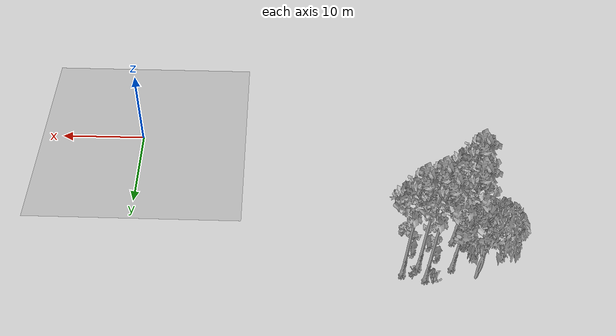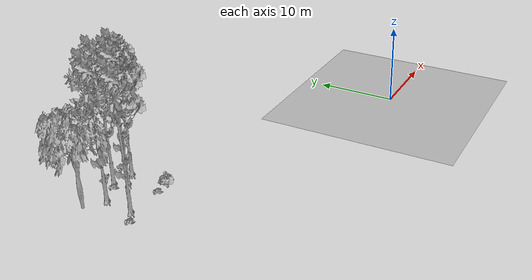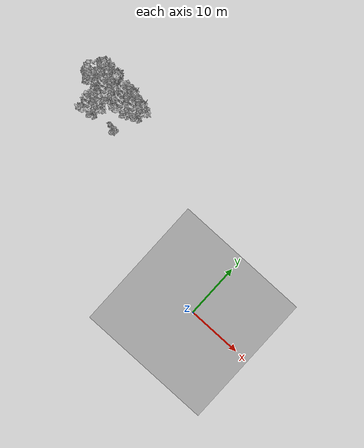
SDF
<sdf version="1.7">
 <world name="default">
  <model name="ground_plane">
   <static>1</static>
   <link name="link">
    <collision name="collision">
     <pose>-50 0 0 0 -0 0</pose>
     <geometry><plane><normal>0 0 1</normal><size>80 80</size></plane></geometry>
     <surface><contact><ode><min_depth>0.01</min_depth><max_vel>0</max_vel></ode></contact></surface>
    </collision>
    <visual name="grass">
     <cast_shadows>0</cast_shadows>
     <geometry>
      <mesh>
       <scale>0.46714285714285714 0.46714285714285714 0.1</scale>
       <uri>file://grass_plane/meshes/grass_plane.dae</uri>
      </mesh>
     </geometry>
    </visual>
   </link>
  </model>
  <model name="Tree 212">
   <static>1</static>
   <pose>-32.1365651964879 18.411424882560254 0 1.57079 -0 0</pose>
   <link name="link">
    <collision name="collision">
     <geometry><mesh><scale>3.5 5 3.5</scale><uri>model://tree_9/meshes/tree_9.obj</uri></mesh></geometry>
    </collision>
    <visual name="visual">
     <geometry><mesh><scale>3.5 5 3.5</scale><uri>model://tree_9/meshes/tree_9.obj</uri></mesh></geometry>
    </visual>
   </link>
  </model>
  <model name="Tree 324">
   <static>1</static>
   <pose>-30.355583406932638 19.28632276620141 0 1.57079 -0 0</pose>
   <link name="link">
    <collision name="collision">
     <geometry><mesh><scale>3.5 5 3.5</scale><uri>model://tree_9/meshes/tree_9.obj</uri></mesh></geometry>
    </collision>
    <visual name="visual">
     <geometry><mesh><scale>3.5 5 3.5</scale><uri>model://tree_9/meshes/tree_9.obj</uri></mesh></geometry>
    </visual>
   </link>
  </model>
  <model name="Tree 338">
   <static>1</static>
   <pose>-32.78918732212225 19.865334830577766 0 1.57079 -0 0</pose>
   <link name="link">
    <collision name="collision">
     <geometry><mesh><scale>3.5 5 3.5</scale><uri>model://tree_9/meshes/tree_9.obj</uri></mesh></geometry>
    </collision>
    <visual name="visual">
     <geometry><mesh><scale>3.5 5 3.5</scale><uri>model://tree_9/meshes/tree_9.obj</uri></mesh></geometry>
    </visual>
   </link>
  </model>
  <model name="Tree 408">
   <static>1</static>
   <pose>-36.32038341167514 14.74145992589402 0 1.57079 -0 0</pose>
   <link name="link">
    <collision name="collision">
     <geometry><mesh><scale>3.5 5 3.5</scale><uri>model://tree_9/meshes/tree_9.obj</uri></mesh></geometry>
    </collision>
    <visual name="visual">
     <geometry><mesh><scale>3.5 5 3.5</scale><uri>model://tree_9/meshes/tree_9.obj</uri></mesh></geometry>
    </visual>
   </link>
  </model>
  <model name="Tree 514">
   <static>1</static>
   <pose>-38.29913075384342 19.448511278266693 0 1.57079 -0 0</pose>
   <link name="link">
    <collision name="collision">
     <geometry><mesh><scale>3.5 5 3.5</scale><uri>model://tree_2/meshes/tree_2.obj</uri></mesh></geometry>
    </collision>
    <visual name="visual">
     <geometry><mesh><scale>3.5 5 3.5</scale><uri>model://tree_2/meshes/tree_2.obj</uri></mesh></geometry>
    </visual>
   </link>
  </model>
  <model name="Tree 587">
   <static>1</static>
   <pose>-35.80267751656869 18.337190398709353 0 1.57079 -0 0</pose>
   <link name="link">
    <collision name="collision">
     <geometry><mesh><scale>3.5 5 3.5</scale><uri>model://tree_9/meshes/tree_9.obj</uri></mesh></geometry>
    </collision>
    <visual name="visual">
     <geometry><mesh><scale>3.5 5 3.5</scale><uri>model://tree_9/meshes/tree_9.obj</uri></mesh></geometry>
    </visual>
   </link>
  </model>
  <model name="Bush 18">
   <static>1</static>
   <pose>-31.05071275971772 13.776693565600226 0 1.57079 -0 0</pose>
   <link name="link">
    <collision name="collision">
     <geometry><mesh><scale>2 2 2</scale><uri>model://bush_1/meshes/bush_1.obj</uri></mesh></geometry>
     <surface><contact><collide_without_contact>false</collide_without_contact></contact></surface>
    </collision>
    <visual name="visual">
     <geometry><mesh><scale>2 2 2</scale><uri>model://bush_1/meshes/bush_1.obj</uri></mesh></geometry>
    </visual>
   </link>
  </model>
  <model name="Bush 81">
   <static>1</static>
   <pose>-33.83586320695577 18.993081363046798 0 1.57079 -0 0</pose>
   <link name="link">
    <collision name="collision">
     <geometry><mesh><scale>2 2 2</scale><uri>model://bush_2/meshes/bush_2.obj</uri></mesh></geometry>
     <surface><contact><collide_without_contact>false</collide_without_contact></contact></surface>
    </collision>
    <visual name="visual">
     <geometry><mesh><scale>2 2 2</scale><uri>model://bush_2/meshes/bush_2.obj</uri></mesh></geometry>
    </visual>
   </link>
  </model>
  <model name="Bush 457">
   <static>1</static>
   <pose>-38.10011618490206 13.450326740176457 0 1.57079 -0 0</pose>
   <link name="link">
    <collision name="collision">
     <geometry><mesh><scale>2 2 2</scale><uri>model://bush_2/meshes/bush_2.obj</uri></mesh></geometry>
     <surface><contact><collide_without_contact>false</collide_without_contact></contact></surface>
    </collision>
    <visual name="visual">
     <geometry><mesh><scale>2 2 2</scale><uri>model://bush_2/meshes/bush_2.obj</uri></mesh></geometry>
    </visual>
   </link>
  </model>
  <model name="Bush 535">
   <static>1</static>
   <pose>-33.56102766072593 20.260794363873806 0 1.57079 -0 0</pose>
   <link name="link">
    <collision name="collision">
     <geometry><mesh><scale>2 2 2</scale><uri>model://bush_4/meshes/bush_4.obj</uri></mesh></geometry>
     <surface><contact><collide_without_contact>false</collide_without_contact></contact></surface>
    </collision>
    <visual name="visual">
     <geometry><mesh><scale>2 2 2</scale><uri>model://bush_4/meshes/bush_4.obj</uri></mesh></geometry>
    </visual>
   </link>
  </model>
  <model name="Bush 563">
   <static>1</static>
   <pose>-32.31856701371155 14.224902781684968 0 1.57079 -0 0</pose>
   <link name="link">
    <collision name="collision">
     <geometry><mesh><scale>2 2 2</scale><uri>model://bush_2/meshes/bush_2.obj</uri></mesh></geometry>
     <surface><contact><collide_without_contact>false</collide_without_contact></contact></surface>
    </collision>
    <visual name="visual">
     <geometry><mesh><scale>2 2 2</scale><uri>model://bush_2/meshes/bush_2.obj</uri></mesh></geometry>
    </visual>
   </link>
  </model>
  <model name="Bush 626">
   <static>1</static>
   <pose>-31.335055847704574 19.905621300008008 0 1.57079 -0 0</pose>
   <link name="link">
    <collision name="collision">
     <geometry><mesh><scale>2 2 2</scale><uri>model://bush_5/meshes/bush_5.obj</uri></mesh></geometry>
     <surface><contact><collide_without_contact>false</collide_without_contact></contact></surface>
    </collision>
    <visual name="visual">
     <geometry><mesh><scale>2 2 2</scale><uri>model://bush_5/meshes/bush_5.obj</uri></mesh></geometry>
    </visual>
   </link>
  </model>
 </world>
</sdf>
